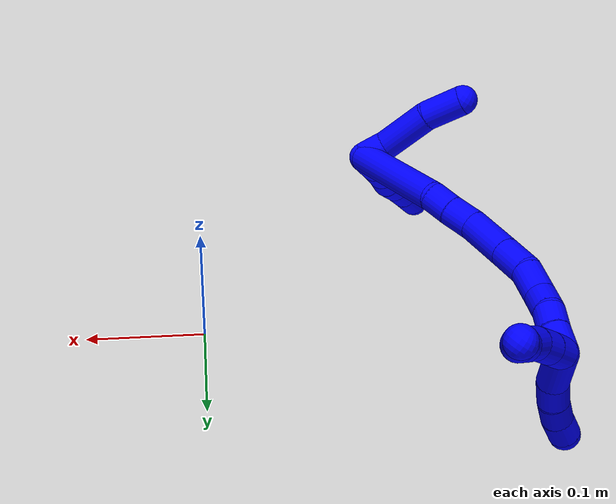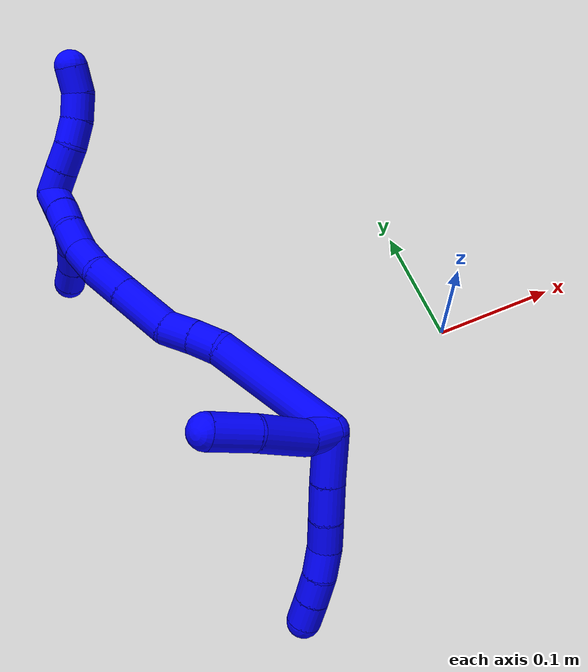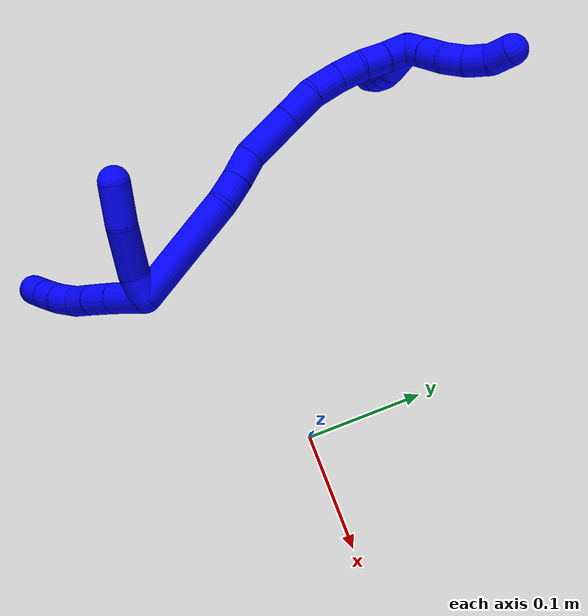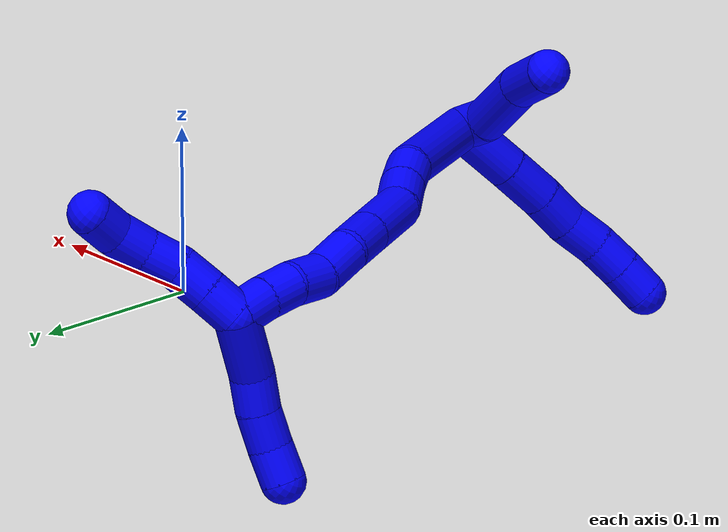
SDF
<sdf version="1.7">
 <world name="default">
  <model name="1">
   <static>0</static>
   <link name="1">
    <collision name="collision-cylinder-e_1_2_8">
     <pose>0.008655 -0.016107 0.003089 1.3813 0.485586 0.4038</pose>
     <geometry><cylinder><radius>0.0125</radius><length>0.037088</length></cylinder></geometry>
     <surface>
      <friction><ode><mu>1.16</mu><mu2>1.16</mu2><slip1>0</slip1><slip2>0</slip2></ode></friction>
      <contact><ode><kp>1e+06</kp><kd>1</kd><max_vel>0</max_vel><min_depth>0.001</min_depth></ode></contact>
     </surface>
    </collision>
    <visual name="visual-cylinder-e_1_2_8">
     <pose>0.008655 -0.016107 0.003089 1.3813 0.485586 0.4038</pose>
     <geometry><cylinder><radius>0.0125</radius><length>0.037088</length></cylinder></geometry>
     <material><ambient>0 0 1 1</ambient></material>
    </visual>
    <collision name="collision-cylinder-e_2_8_9">
     <pose>0.023556 -0.044425 0.008883 1.35281 0.463161 0.374158</pose>
     <geometry><cylinder><radius>0.0125</radius><length>0.02796</length></cylinder></geometry>
     <surface>
      <friction><ode><mu>1.16</mu><mu2>1.16</mu2><slip1>0</slip1><slip2>0</slip2></ode></friction>
      <contact><ode><kp>1e+06</kp><kd>1</kd><max_vel>0</max_vel><min_depth>0.001</min_depth></ode></contact>
     </surface>
    </collision>
    <visual name="visual-cylinder-e_2_8_9">
     <pose>0.023556 -0.044425 0.008883 1.35281 0.463161 0.374158</pose>
     <geometry><cylinder><radius>0.0125</radius><length>0.02796</length></cylinder></geometry>
     <material><ambient>0 0 1 1</ambient></material>
    </visual>
    <collision name="collision-cylinder-e_3_9_10">
     <pose>0.035101 -0.066166 0.01447 1.27716 0.489095 0.366335</pose>
     <geometry><cylinder><radius>0.0125</radius><length>0.022556</length></cylinder></geometry>
     <surface>
      <friction><ode><mu>1.16</mu><mu2>1.16</mu2><slip1>0</slip1><slip2>0</slip2></ode></friction>
      <contact><ode><kp>1e+06</kp><kd>1</kd><max_vel>0</max_vel><min_depth>0.001</min_depth></ode></contact>
     </surface>
    </collision>
    <visual name="visual-cylinder-e_3_9_10">
     <pose>0.035101 -0.066166 0.01447 1.27716 0.489095 0.366335</pose>
     <geometry><cylinder><radius>0.0125</radius><length>0.022556</length></cylinder></geometry>
     <material><ambient>0 0 1 1</ambient></material>
    </visual>
    <collision name="collision-cylinder-e_4_10_11">
     <pose>0.046261 -0.084975 0.018119 1.48826 0.561829 0.519328</pose>
     <geometry><cylinder><radius>0.0125</radius><length>0.022005</length></cylinder></geometry>
     <surface>
      <friction><ode><mu>1.16</mu><mu2>1.16</mu2><slip1>0</slip1><slip2>0</slip2></ode></friction>
      <contact><ode><kp>1e+06</kp><kd>1</kd><max_vel>0</max_vel><min_depth>0.001</min_depth></ode></contact>
     </surface>
    </collision>
    <visual name="visual-cylinder-e_4_10_11">
     <pose>0.046261 -0.084975 0.018119 1.48826 0.561829 0.519328</pose>
     <geometry><cylinder><radius>0.0125</radius><length>0.022005</length></cylinder></geometry>
     <material><ambient>0 0 1 1</ambient></material>
    </visual>
    <collision name="collision-cylinder-e_5_11_12">
     <pose>0.058596 -0.101885 0.020102 1.41286 0.697409 0.60165</pose>
     <geometry><cylinder><radius>0.0125</radius><length>0.02016</length></cylinder></geometry>
     <surface>
      <friction><ode><mu>1.16</mu><mu2>1.16</mu2><slip1>0</slip1><slip2>0</slip2></ode></friction>
      <contact><ode><kp>1e+06</kp><kd>1</kd><max_vel>0</max_vel><min_depth>0.001</min_depth></ode></contact>
     </surface>
    </collision>
    <visual name="visual-cylinder-e_5_11_12">
     <pose>0.058596 -0.101885 0.020102 1.41286 0.697409 0.60165</pose>
     <geometry><cylinder><radius>0.0125</radius><length>0.02016</length></cylinder></geometry>
     <material><ambient>0 0 1 1</ambient></material>
    </visual>
    <collision name="collision-cylinder-e_6_12_6">
     <pose>0.071869 -0.116844 0.022858 1.36355 0.737153 0.607521</pose>
     <geometry><cylinder><radius>0.0125</radius><length>0.020231</length></cylinder></geometry>
     <surface>
      <friction><ode><mu>1.16</mu><mu2>1.16</mu2><slip1>0</slip1><slip2>0</slip2></ode></friction>
      <contact><ode><kp>1e+06</kp><kd>1</kd><max_vel>0</max_vel><min_depth>0.001</min_depth></ode></contact>
     </surface>
    </collision>
    <visual name="visual-cylinder-e_6_12_6">
     <pose>0.071869 -0.116844 0.022858 1.36355 0.737153 0.607521</pose>
     <geometry><cylinder><radius>0.0125</radius><length>0.020231</length></cylinder></geometry>
     <material><ambient>0 0 1 1</ambient></material>
    </visual>
    <collision name="collision-cylinder-e_1_2_13">
     <pose>0.004882 0.000385 -0.009337 -3.10043 0.481399 -2.97426</pose>
     <geometry><cylinder><radius>0.0125</radius><length>0.021086</length></cylinder></geometry>
     <surface>
      <friction><ode><mu>1.16</mu><mu2>1.16</mu2><slip1>0</slip1><slip2>0</slip2></ode></friction>
      <contact><ode><kp>1e+06</kp><kd>1</kd><max_vel>0</max_vel><min_depth>0.001</min_depth></ode></contact>
     </surface>
    </collision>
    <visual name="visual-cylinder-e_1_2_13">
     <pose>0.004882 0.000385 -0.009337 -3.10043 0.481399 -2.97426</pose>
     <geometry><cylinder><radius>0.0125</radius><length>0.021086</length></cylinder></geometry>
     <material><ambient>0 0 1 1</ambient></material>
    </visual>
    <collision name="collision-cylinder-e_2_13_14">
     <pose>0.016165 0.007532 -0.039169 -2.82286 0.28835 -1.46922</pose>
     <geometry><cylinder><radius>0.0125</radius><length>0.045023</length></cylinder></geometry>
     <surface>
      <friction><ode><mu>1.16</mu><mu2>1.16</mu2><slip1>0</slip1><slip2>0</slip2></ode></friction>
      <contact><ode><kp>1e+06</kp><kd>1</kd><max_vel>0</max_vel><min_depth>0.001</min_depth></ode></contact>
     </surface>
    </collision>
    <visual name="visual-cylinder-e_2_13_14">
     <pose>0.016165 0.007532 -0.039169 -2.82286 0.28835 -1.46922</pose>
     <geometry><cylinder><radius>0.0125</radius><length>0.045023</length></cylinder></geometry>
     <material><ambient>0 0 1 1</ambient></material>
    </visual>
    <collision name="collision-cylinder-e_3_14_5">
     <pose>0.030643 0.019355 -0.073675 -2.79506 0.496777 -1.93352</pose>
     <geometry><cylinder><radius>0.0125</radius><length>0.033891</length></cylinder></geometry>
     <surface>
      <friction><ode><mu>1.16</mu><mu2>1.16</mu2><slip1>0</slip1><slip2>0</slip2></ode></friction>
      <contact><ode><kp>1e+06</kp><kd>1</kd><max_vel>0</max_vel><min_depth>0.001</min_depth></ode></contact>
     </surface>
    </collision>
    <visual name="visual-cylinder-e_3_14_5">
     <pose>0.030643 0.019355 -0.073675 -2.79506 0.496777 -1.93352</pose>
     <geometry><cylinder><radius>0.0125</radius><length>0.033891</length></cylinder></geometry>
     <material><ambient>0 0 1 1</ambient></material>
    </visual>
    <collision name="collision-cylinder-e_1_2_15">
     <pose>0.02729 0.038267 -0.006441 -1.73755 0.612906 -0.716013</pose>
     <geometry><cylinder><radius>0.0125</radius><length>0.094881</length></cylinder></geometry>
     <surface>
      <friction><ode><mu>1.16</mu><mu2>1.16</mu2><slip1>0</slip1><slip2>0</slip2></ode></friction>
      <contact><ode><kp>1e+06</kp><kd>1</kd><max_vel>0</max_vel><min_depth>0.001</min_depth></ode></contact>
     </surface>
    </collision>
    <visual name="visual-cylinder-e_1_2_15">
     <pose>0.02729 0.038267 -0.006441 -1.73755 0.612906 -0.716013</pose>
     <geometry><cylinder><radius>0.0125</radius><length>0.094881</length></cylinder></geometry>
     <material><ambient>0 0 1 1</ambient></material>
    </visual>
    <collision name="collision-cylinder-e_2_15_16">
     <pose>0.062965 0.083185 -0.013011 -1.59024 0.900148 -0.915477</pose>
     <geometry><cylinder><radius>0.0125</radius><length>0.021406</length></cylinder></geometry>
     <surface>
      <friction><ode><mu>1.16</mu><mu2>1.16</mu2><slip1>0</slip1><slip2>0</slip2></ode></friction>
      <contact><ode><kp>1e+06</kp><kd>1</kd><max_vel>0</max_vel><min_depth>0.001</min_depth></ode></contact>
     </surface>
    </collision>
    <visual name="visual-cylinder-e_2_15_16">
     <pose>0.062965 0.083185 -0.013011 -1.59024 0.900148 -0.915477</pose>
     <geometry><cylinder><radius>0.0125</radius><length>0.021406</length></cylinder></geometry>
     <material><ambient>0 0 1 1</ambient></material>
    </visual>
    <collision name="collision-cylinder-e_3_16_17">
     <pose>0.080868 0.096573 -0.013832 -1.67307 0.952372 -1.03828</pose>
     <geometry><cylinder><radius>0.0125</radius><length>0.023365</length></cylinder></geometry>
     <surface>
      <friction><ode><mu>1.16</mu><mu2>1.16</mu2><slip1>0</slip1><slip2>0</slip2></ode></friction>
      <contact><ode><kp>1e+06</kp><kd>1</kd><max_vel>0</max_vel><min_depth>0.001</min_depth></ode></contact>
     </surface>
    </collision>
    <visual name="visual-cylinder-e_3_16_17">
     <pose>0.080868 0.096573 -0.013832 -1.67307 0.952372 -1.03828</pose>
     <geometry><cylinder><radius>0.0125</radius><length>0.023365</length></cylinder></geometry>
     <material><ambient>0 0 1 1</ambient></material>
    </visual>
    <collision name="collision-cylinder-e_4_17_18">
     <pose>0.103056 0.120855 -0.014511 -1.5701 0.625384 -0.624977</pose>
     <geometry><cylinder><radius>0.0125</radius><length>0.04328</length></cylinder></geometry>
     <surface>
      <friction><ode><mu>1.16</mu><mu2>1.16</mu2><slip1>0</slip1><slip2>0</slip2></ode></friction>
      <contact><ode><kp>1e+06</kp><kd>1</kd><max_vel>0</max_vel><min_depth>0.001</min_depth></ode></contact>
     </surface>
    </collision>
    <visual name="visual-cylinder-e_4_17_18">
     <pose>0.103056 0.120855 -0.014511 -1.5701 0.625384 -0.624977</pose>
     <geometry><cylinder><radius>0.0125</radius><length>0.04328</length></cylinder></geometry>
     <material><ambient>0 0 1 1</ambient></material>
    </visual>
    <collision name="collision-cylinder-e_5_18_19">
     <pose>0.123851 0.149577 -0.014394 -1.56145 0.628656 -0.623181</pose>
     <geometry><cylinder><radius>0.0125</radius><length>0.027641</length></cylinder></geometry>
     <surface>
      <friction><ode><mu>1.16</mu><mu2>1.16</mu2><slip1>0</slip1><slip2>0</slip2></ode></friction>
      <contact><ode><kp>1e+06</kp><kd>1</kd><max_vel>0</max_vel><min_depth>0.001</min_depth></ode></contact>
     </surface>
    </collision>
    <visual name="visual-cylinder-e_5_18_19">
     <pose>0.123851 0.149577 -0.014394 -1.56145 0.628656 -0.623181</pose>
     <geometry><cylinder><radius>0.0125</radius><length>0.027641</length></cylinder></geometry>
     <material><ambient>0 0 1 1</ambient></material>
    </visual>
    <collision name="collision-cylinder-e_6_19_20">
     <pose>0.139356 0.17101 -0.010543 -1.22053 0.59425 -0.421873</pose>
     <geometry><cylinder><radius>0.0125</radius><length>0.026354</length></cylinder></geometry>
     <surface>
      <friction><ode><mu>1.16</mu><mu2>1.16</mu2><slip1>0</slip1><slip2>0</slip2></ode></friction>
      <contact><ode><kp>1e+06</kp><kd>1</kd><max_vel>0</max_vel><min_depth>0.001</min_depth></ode></contact>
     </surface>
    </collision>
    <visual name="visual-cylinder-e_6_19_20">
     <pose>0.139356 0.17101 -0.010543 -1.22053 0.59425 -0.421873</pose>
     <geometry><cylinder><radius>0.0125</radius><length>0.026354</length></cylinder></geometry>
     <material><ambient>0 0 1 1</ambient></material>
    </visual>
    <collision name="collision-cylinder-e_7_20_21">
     <pose>0.150062 0.19155 -0.004977 -1.39567 0.308444 -0.259267</pose>
     <geometry><cylinder><radius>0.0125</radius><length>0.021925</length></cylinder></geometry>
     <surface>
      <friction><ode><mu>1.16</mu><mu2>1.16</mu2><slip1>0</slip1><slip2>0</slip2></ode></friction>
      <contact><ode><kp>1e+06</kp><kd>1</kd><max_vel>0</max_vel><min_depth>0.001</min_depth></ode></contact>
     </surface>
    </collision>
    <visual name="visual-cylinder-e_7_20_21">
     <pose>0.150062 0.19155 -0.004977 -1.39567 0.308444 -0.259267</pose>
     <geometry><cylinder><radius>0.0125</radius><length>0.021925</length></cylinder></geometry>
     <material><ambient>0 0 1 1</ambient></material>
    </visual>
    <collision name="collision-cylinder-e_8_21_22">
     <pose>0.156865 0.210532 0.000629 -1.16021 0.351253 -0.231538</pose>
     <geometry><cylinder><radius>0.0125</radius><length>0.020204</length></cylinder></geometry>
     <surface>
      <friction><ode><mu>1.16</mu><mu2>1.16</mu2><slip1>0</slip1><slip2>0</slip2></ode></friction>
      <contact><ode><kp>1e+06</kp><kd>1</kd><max_vel>0</max_vel><min_depth>0.001</min_depth></ode></contact>
     </surface>
    </collision>
    <visual name="visual-cylinder-e_8_21_22">
     <pose>0.156865 0.210532 0.000629 -1.16021 0.351253 -0.231538</pose>
     <geometry><cylinder><radius>0.0125</radius><length>0.020204</length></cylinder></geometry>
     <material><ambient>0 0 1 1</ambient></material>
    </visual>
    <collision name="collision-cylinder-e_9_22_1">
     <pose>0.164851 0.227906 0.008162 -1.16317 0.445202 -0.295456</pose>
     <geometry><cylinder><radius>0.0125</radius><length>0.020945</length></cylinder></geometry>
     <surface>
      <friction><ode><mu>1.16</mu><mu2>1.16</mu2><slip1>0</slip1><slip2>0</slip2></ode></friction>
      <contact><ode><kp>1e+06</kp><kd>1</kd><max_vel>0</max_vel><min_depth>0.001</min_depth></ode></contact>
     </surface>
    </collision>
    <visual name="visual-cylinder-e_9_22_1">
     <pose>0.164851 0.227906 0.008162 -1.16317 0.445202 -0.295456</pose>
     <geometry><cylinder><radius>0.0125</radius><length>0.020945</length></cylinder></geometry>
     <material><ambient>0 0 1 1</ambient></material>
    </visual>
    <collision name="collision-cylinder-e_1_1_23">
     <pose>0.162226 0.243589 0.011771 -1.59047 -0.794451 0.808586</pose>
     <geometry><cylinder><radius>0.0125</radius><length>0.02</length></cylinder></geometry>
     <surface>
      <friction><ode><mu>1.16</mu><mu2>1.16</mu2><slip1>0</slip1><slip2>0</slip2></ode></friction>
      <contact><ode><kp>1e+06</kp><kd>1</kd><max_vel>0</max_vel><min_depth>0.001</min_depth></ode></contact>
     </surface>
    </collision>
    <visual name="visual-cylinder-e_1_1_23">
     <pose>0.162226 0.243589 0.011771 -1.59047 -0.794451 0.808586</pose>
     <geometry><cylinder><radius>0.0125</radius><length>0.02</length></cylinder></geometry>
     <material><ambient>0 0 1 1</ambient></material>
    </visual>
    <collision name="collision-cylinder-e_2_23_24">
     <pose>0.147967 0.25761 0.011763 -1.55225 -0.792945 0.779817</pose>
     <geometry><cylinder><radius>0.0125</radius><length>0.02</length></cylinder></geometry>
     <surface>
      <friction><ode><mu>1.16</mu><mu2>1.16</mu2><slip1>0</slip1><slip2>0</slip2></ode></friction>
      <contact><ode><kp>1e+06</kp><kd>1</kd><max_vel>0</max_vel><min_depth>0.001</min_depth></ode></contact>
     </surface>
    </collision>
    <visual name="visual-cylinder-e_2_23_24">
     <pose>0.147967 0.25761 0.011763 -1.55225 -0.792945 0.779817</pose>
     <geometry><cylinder><radius>0.0125</radius><length>0.02</length></cylinder></geometry>
     <material><ambient>0 0 1 1</ambient></material>
    </visual>
    <collision name="collision-cylinder-e_3_24_25">
     <pose>0.13546 0.272967 0.013105 -1.42649 -0.568378 0.495066</pose>
     <geometry><cylinder><radius>0.0125</radius><length>0.02</length></cylinder></geometry>
     <surface>
      <friction><ode><mu>1.16</mu><mu2>1.16</mu2><slip1>0</slip1><slip2>0</slip2></ode></friction>
      <contact><ode><kp>1e+06</kp><kd>1</kd><max_vel>0</max_vel><min_depth>0.001</min_depth></ode></contact>
     </surface>
    </collision>
    <visual name="visual-cylinder-e_3_24_25">
     <pose>0.13546 0.272967 0.013105 -1.42649 -0.568378 0.495066</pose>
     <geometry><cylinder><radius>0.0125</radius><length>0.02</length></cylinder></geometry>
     <material><ambient>0 0 1 1</ambient></material>
    </visual>
    <collision name="collision-cylinder-e_4_25_26">
     <pose>0.125707 0.290299 0.014085 -1.59658 -0.45225 0.463652</pose>
     <geometry><cylinder><radius>0.0125</radius><length>0.02</length></cylinder></geometry>
     <surface>
      <friction><ode><mu>1.16</mu><mu2>1.16</mu2><slip1>0</slip1><slip2>0</slip2></ode></friction>
      <contact><ode><kp>1e+06</kp><kd>1</kd><max_vel>0</max_vel><min_depth>0.001</min_depth></ode></contact>
     </surface>
    </collision>
    <visual name="visual-cylinder-e_4_25_26">
     <pose>0.125707 0.290299 0.014085 -1.59658 -0.45225 0.463652</pose>
     <geometry><cylinder><radius>0.0125</radius><length>0.02</length></cylinder></geometry>
     <material><ambient>0 0 1 1</ambient></material>
    </visual>
    <collision name="collision-cylinder-e_5_26_4">
     <pose>0.118854 0.308525 0.010929 -1.87749 -0.250954 0.341171</pose>
     <geometry><cylinder><radius>0.0125</radius><length>0.02</length></cylinder></geometry>
     <surface>
      <friction><ode><mu>1.16</mu><mu2>1.16</mu2><slip1>0</slip1><slip2>0</slip2></ode></friction>
      <contact><ode><kp>1e+06</kp><kd>1</kd><max_vel>0</max_vel><min_depth>0.001</min_depth></ode></contact>
     </surface>
    </collision>
    <visual name="visual-cylinder-e_5_26_4">
     <pose>0.118854 0.308525 0.010929 -1.87749 -0.250954 0.341171</pose>
     <geometry><cylinder><radius>0.0125</radius><length>0.02</length></cylinder></geometry>
     <material><ambient>0 0 1 1</ambient></material>
    </visual>
    <collision name="collision-cylinder-e_1_1_27">
     <pose>0.176437 0.224711 0.024538 0.754485 0.387588 0.155209</pose>
     <geometry><cylinder><radius>0.0125</radius><length>0.037445</length></cylinder></geometry>
     <surface>
      <friction><ode><mu>1.16</mu><mu2>1.16</mu2><slip1>0</slip1><slip2>0</slip2></ode></friction>
      <contact><ode><kp>1e+06</kp><kd>1</kd><max_vel>0</max_vel><min_depth>0.001</min_depth></ode></contact>
     </surface>
    </collision>
    <visual name="visual-cylinder-e_1_1_27">
     <pose>0.176437 0.224711 0.024538 0.754485 0.387588 0.155209</pose>
     <geometry><cylinder><radius>0.0125</radius><length>0.037445</length></cylinder></geometry>
     <material><ambient>0 0 1 1</ambient></material>
    </visual>
    <collision name="collision-cylinder-e_2_27_28">
     <pose>0.189789 0.208007 0.044223 0.600545 0.633068 0.202149</pose>
     <geometry><cylinder><radius>0.0125</radius><length>0.021213</length></cylinder></geometry>
     <surface>
      <friction><ode><mu>1.16</mu><mu2>1.16</mu2><slip1>0</slip1><slip2>0</slip2></ode></friction>
      <contact><ode><kp>1e+06</kp><kd>1</kd><max_vel>0</max_vel><min_depth>0.001</min_depth></ode></contact>
     </surface>
    </collision>
    <visual name="visual-cylinder-e_2_27_28">
     <pose>0.189789 0.208007 0.044223 0.600545 0.633068 0.202149</pose>
     <geometry><cylinder><radius>0.0125</radius><length>0.021213</length></cylinder></geometry>
     <material><ambient>0 0 1 1</ambient></material>
    </visual>
    <collision name="collision-cylinder-e_3_28_29">
     <pose>0.202897 0.197685 0.057036 0.761484 0.709662 0.294467</pose>
     <geometry><cylinder><radius>0.0125</radius><length>0.020974</length></cylinder></geometry>
     <surface>
      <friction><ode><mu>1.16</mu><mu2>1.16</mu2><slip1>0</slip1><slip2>0</slip2></ode></friction>
      <contact><ode><kp>1e+06</kp><kd>1</kd><max_vel>0</max_vel><min_depth>0.001</min_depth></ode></contact>
     </surface>
    </collision>
    <visual name="visual-cylinder-e_3_28_29">
     <pose>0.202897 0.197685 0.057036 0.761484 0.709662 0.294467</pose>
     <geometry><cylinder><radius>0.0125</radius><length>0.020974</length></cylinder></geometry>
     <material><ambient>0 0 1 1</ambient></material>
    </visual>
    <collision name="collision-cylinder-e_4_29_3">
     <pose>0.217462 0.187416 0.067385 0.805715 0.862158 0.387103</pose>
     <geometry><cylinder><radius>0.0125</radius><length>0.020368</length></cylinder></geometry>
     <surface>
      <friction><ode><mu>1.16</mu><mu2>1.16</mu2><slip1>0</slip1><slip2>0</slip2></ode></friction>
      <contact><ode><kp>1e+06</kp><kd>1</kd><max_vel>0</max_vel><min_depth>0.001</min_depth></ode></contact>
     </surface>
    </collision>
    <visual name="visual-cylinder-e_4_29_3">
     <pose>0.217462 0.187416 0.067385 0.805715 0.862158 0.387103</pose>
     <geometry><cylinder><radius>0.0125</radius><length>0.020368</length></cylinder></geometry>
     <material><ambient>0 0 1 1</ambient></material>
    </visual>
    <collision name="collision-sphere-3">
     <pose>0.225194 0.182635 0.071975 0 -0 0</pose>
     <geometry><sphere><radius>0.0125</radius></sphere></geometry>
     <surface>
      <friction><ode><mu>1.16</mu><mu2>1.16</mu2><slip1>0</slip1><slip2>0</slip2></ode></friction>
      <contact><ode><kp>1e+06</kp><kd>1</kd><max_vel>0</max_vel><min_depth>0.001</min_depth></ode></contact>
     </surface>
    </collision>
    <visual name="visual-sphere-3">
     <pose>0.225194 0.182635 0.071975 0 -0 0</pose>
     <geometry><sphere><radius>0.0125</radius></sphere></geometry>
     <material><ambient>0 0 1 1</ambient></material>
    </visual>
    <collision name="collision-sphere-29">
     <pose>0.20973 0.192196 0.062794 0 -0 0</pose>
     <geometry><sphere><radius>0.0125</radius></sphere></geometry>
     <surface>
      <friction><ode><mu>1.16</mu><mu2>1.16</mu2><slip1>0</slip1><slip2>0</slip2></ode></friction>
      <contact><ode><kp>1e+06</kp><kd>1</kd><max_vel>0</max_vel><min_depth>0.001</min_depth></ode></contact>
     </surface>
    </collision>
    <visual name="visual-sphere-29">
     <pose>0.20973 0.192196 0.062794 0 -0 0</pose>
     <geometry><sphere><radius>0.0125</radius></sphere></geometry>
     <material><ambient>0 0 1 1</ambient></material>
    </visual>
    <collision name="collision-sphere-28">
     <pose>0.196064 0.203174 0.051278 0 -0 0</pose>
     <geometry><sphere><radius>0.0125</radius></sphere></geometry>
     <surface>
      <friction><ode><mu>1.16</mu><mu2>1.16</mu2><slip1>0</slip1><slip2>0</slip2></ode></friction>
      <contact><ode><kp>1e+06</kp><kd>1</kd><max_vel>0</max_vel><min_depth>0.001</min_depth></ode></contact>
     </surface>
    </collision>
    <visual name="visual-sphere-28">
     <pose>0.196064 0.203174 0.051278 0 -0 0</pose>
     <geometry><sphere><radius>0.0125</radius></sphere></geometry>
     <material><ambient>0 0 1 1</ambient></material>
    </visual>
    <collision name="collision-sphere-27">
     <pose>0.183513 0.212839 0.037168 0 -0 0</pose>
     <geometry><sphere><radius>0.0125</radius></sphere></geometry>
     <surface>
      <friction><ode><mu>1.16</mu><mu2>1.16</mu2><slip1>0</slip1><slip2>0</slip2></ode></friction>
      <contact><ode><kp>1e+06</kp><kd>1</kd><max_vel>0</max_vel><min_depth>0.001</min_depth></ode></contact>
     </surface>
    </collision>
    <visual name="visual-sphere-27">
     <pose>0.183513 0.212839 0.037168 0 -0 0</pose>
     <geometry><sphere><radius>0.0125</radius></sphere></geometry>
     <material><ambient>0 0 1 1</ambient></material>
    </visual>
    <collision name="collision-sphere-4">
     <pose>0.116371 0.31776 0.008004 0 -0 0</pose>
     <geometry><sphere><radius>0.0125</radius></sphere></geometry>
     <surface>
      <friction><ode><mu>1.16</mu><mu2>1.16</mu2><slip1>0</slip1><slip2>0</slip2></ode></friction>
      <contact><ode><kp>1e+06</kp><kd>1</kd><max_vel>0</max_vel><min_depth>0.001</min_depth></ode></contact>
     </surface>
    </collision>
    <visual name="visual-sphere-4">
     <pose>0.116371 0.31776 0.008004 0 -0 0</pose>
     <geometry><sphere><radius>0.0125</radius></sphere></geometry>
     <material><ambient>0 0 1 1</ambient></material>
    </visual>
    <collision name="collision-sphere-26">
     <pose>0.121338 0.29929 0.013853 0 -0 0</pose>
     <geometry><sphere><radius>0.0125</radius></sphere></geometry>
     <surface>
      <friction><ode><mu>1.16</mu><mu2>1.16</mu2><slip1>0</slip1><slip2>0</slip2></ode></friction>
      <contact><ode><kp>1e+06</kp><kd>1</kd><max_vel>0</max_vel><min_depth>0.001</min_depth></ode></contact>
     </surface>
    </collision>
    <visual name="visual-sphere-26">
     <pose>0.121338 0.29929 0.013853 0 -0 0</pose>
     <geometry><sphere><radius>0.0125</radius></sphere></geometry>
     <material><ambient>0 0 1 1</ambient></material>
    </visual>
    <collision name="collision-sphere-25">
     <pose>0.130077 0.281307 0.014317 0 -0 0</pose>
     <geometry><sphere><radius>0.0125</radius></sphere></geometry>
     <surface>
      <friction><ode><mu>1.16</mu><mu2>1.16</mu2><slip1>0</slip1><slip2>0</slip2></ode></friction>
      <contact><ode><kp>1e+06</kp><kd>1</kd><max_vel>0</max_vel><min_depth>0.001</min_depth></ode></contact>
     </surface>
    </collision>
    <visual name="visual-sphere-25">
     <pose>0.130077 0.281307 0.014317 0 -0 0</pose>
     <geometry><sphere><radius>0.0125</radius></sphere></geometry>
     <material><ambient>0 0 1 1</ambient></material>
    </visual>
    <collision name="collision-sphere-24">
     <pose>0.140843 0.264627 0.011893 0 -0 0</pose>
     <geometry><sphere><radius>0.0125</radius></sphere></geometry>
     <surface>
      <friction><ode><mu>1.16</mu><mu2>1.16</mu2><slip1>0</slip1><slip2>0</slip2></ode></friction>
      <contact><ode><kp>1e+06</kp><kd>1</kd><max_vel>0</max_vel><min_depth>0.001</min_depth></ode></contact>
     </surface>
    </collision>
    <visual name="visual-sphere-24">
     <pose>0.140843 0.264627 0.011893 0 -0 0</pose>
     <geometry><sphere><radius>0.0125</radius></sphere></geometry>
     <material><ambient>0 0 1 1</ambient></material>
    </visual>
    <collision name="collision-sphere-23">
     <pose>0.155091 0.250594 0.011633 0 -0 0</pose>
     <geometry><sphere><radius>0.0125</radius></sphere></geometry>
     <surface>
      <friction><ode><mu>1.16</mu><mu2>1.16</mu2><slip1>0</slip1><slip2>0</slip2></ode></friction>
      <contact><ode><kp>1e+06</kp><kd>1</kd><max_vel>0</max_vel><min_depth>0.001</min_depth></ode></contact>
     </surface>
    </collision>
    <visual name="visual-sphere-23">
     <pose>0.155091 0.250594 0.011633 0 -0 0</pose>
     <geometry><sphere><radius>0.0125</radius></sphere></geometry>
     <material><ambient>0 0 1 1</ambient></material>
    </visual>
    <collision name="collision-sphere-1">
     <pose>0.169361 0.236583 0.011908 0 -0 0</pose>
     <geometry><sphere><radius>0.0125</radius></sphere></geometry>
     <surface>
      <friction><ode><mu>1.16</mu><mu2>1.16</mu2><slip1>0</slip1><slip2>0</slip2></ode></friction>
      <contact><ode><kp>1e+06</kp><kd>1</kd><max_vel>0</max_vel><min_depth>0.001</min_depth></ode></contact>
     </surface>
    </collision>
    <visual name="visual-sphere-1">
     <pose>0.169361 0.236583 0.011908 0 -0 0</pose>
     <geometry><sphere><radius>0.0125</radius></sphere></geometry>
     <material><ambient>0 0 1 1</ambient></material>
    </visual>
    <collision name="collision-sphere-22">
     <pose>0.160341 0.219229 0.004415 0 -0 0</pose>
     <geometry><sphere><radius>0.0125</radius></sphere></geometry>
     <surface>
      <friction><ode><mu>1.16</mu><mu2>1.16</mu2><slip1>0</slip1><slip2>0</slip2></ode></friction>
      <contact><ode><kp>1e+06</kp><kd>1</kd><max_vel>0</max_vel><min_depth>0.001</min_depth></ode></contact>
     </surface>
    </collision>
    <visual name="visual-sphere-22">
     <pose>0.160341 0.219229 0.004415 0 -0 0</pose>
     <geometry><sphere><radius>0.0125</radius></sphere></geometry>
     <material><ambient>0 0 1 1</ambient></material>
    </visual>
    <collision name="collision-sphere-21">
     <pose>0.15339 0.201836 -0.003157 0 -0 0</pose>
     <geometry><sphere><radius>0.0125</radius></sphere></geometry>
     <surface>
      <friction><ode><mu>1.16</mu><mu2>1.16</mu2><slip1>0</slip1><slip2>0</slip2></ode></friction>
      <contact><ode><kp>1e+06</kp><kd>1</kd><max_vel>0</max_vel><min_depth>0.001</min_depth></ode></contact>
     </surface>
    </collision>
    <visual name="visual-sphere-21">
     <pose>0.15339 0.201836 -0.003157 0 -0 0</pose>
     <geometry><sphere><radius>0.0125</radius></sphere></geometry>
     <material><ambient>0 0 1 1</ambient></material>
    </visual>
    <collision name="collision-sphere-12">
     <pose>0.06507 -0.109515 0.021317 0 -0 0</pose>
     <geometry><sphere><radius>0.0125</radius></sphere></geometry>
     <surface>
      <friction><ode><mu>1.16</mu><mu2>1.16</mu2><slip1>0</slip1><slip2>0</slip2></ode></friction>
      <contact><ode><kp>1e+06</kp><kd>1</kd><max_vel>0</max_vel><min_depth>0.001</min_depth></ode></contact>
     </surface>
    </collision>
    <visual name="visual-sphere-12">
     <pose>0.06507 -0.109515 0.021317 0 -0 0</pose>
     <geometry><sphere><radius>0.0125</radius></sphere></geometry>
     <material><ambient>0 0 1 1</ambient></material>
    </visual>
    <collision name="collision-sphere-11">
     <pose>0.052122 -0.094255 0.018887 0 -0 0</pose>
     <geometry><sphere><radius>0.0125</radius></sphere></geometry>
     <surface>
      <friction><ode><mu>1.16</mu><mu2>1.16</mu2><slip1>0</slip1><slip2>0</slip2></ode></friction>
      <contact><ode><kp>1e+06</kp><kd>1</kd><max_vel>0</max_vel><min_depth>0.001</min_depth></ode></contact>
     </surface>
    </collision>
    <visual name="visual-sphere-11">
     <pose>0.052122 -0.094255 0.018887 0 -0 0</pose>
     <geometry><sphere><radius>0.0125</radius></sphere></geometry>
     <material><ambient>0 0 1 1</ambient></material>
    </visual>
    <collision name="collision-sphere-10">
     <pose>0.040399 -0.075695 0.017352 0 -0 0</pose>
     <geometry><sphere><radius>0.0125</radius></sphere></geometry>
     <surface>
      <friction><ode><mu>1.16</mu><mu2>1.16</mu2><slip1>0</slip1><slip2>0</slip2></ode></friction>
      <contact><ode><kp>1e+06</kp><kd>1</kd><max_vel>0</max_vel><min_depth>0.001</min_depth></ode></contact>
     </surface>
    </collision>
    <visual name="visual-sphere-10">
     <pose>0.040399 -0.075695 0.017352 0 -0 0</pose>
     <geometry><sphere><radius>0.0125</radius></sphere></geometry>
     <material><ambient>0 0 1 1</ambient></material>
    </visual>
    <collision name="collision-sphere-9">
     <pose>0.029802 -0.056636 0.011588 0 -0 0</pose>
     <geometry><sphere><radius>0.0125</radius></sphere></geometry>
     <surface>
      <friction><ode><mu>1.16</mu><mu2>1.16</mu2><slip1>0</slip1><slip2>0</slip2></ode></friction>
      <contact><ode><kp>1e+06</kp><kd>1</kd><max_vel>0</max_vel><min_depth>0.001</min_depth></ode></contact>
     </surface>
    </collision>
    <visual name="visual-sphere-9">
     <pose>0.029802 -0.056636 0.011588 0 -0 0</pose>
     <geometry><sphere><radius>0.0125</radius></sphere></geometry>
     <material><ambient>0 0 1 1</ambient></material>
    </visual>
    <collision name="collision-sphere-2">
     <geometry><sphere><radius>0.0125</radius></sphere></geometry>
     <surface>
      <friction><ode><mu>1.16</mu><mu2>1.16</mu2><slip1>0</slip1><slip2>0</slip2></ode></friction>
      <contact><ode><kp>1e+06</kp><kd>1</kd><max_vel>0</max_vel><min_depth>0.001</min_depth></ode></contact>
     </surface>
    </collision>
    <visual name="visual-sphere-2">
     <geometry><sphere><radius>0.0125</radius></sphere></geometry>
     <material><ambient>0 0 1 1</ambient></material>
    </visual>
    <collision name="collision-sphere-19">
     <pose>0.131978 0.160755 -0.01429 0 -0 0</pose>
     <geometry><sphere><radius>0.0125</radius></sphere></geometry>
     <surface>
      <friction><ode><mu>1.16</mu><mu2>1.16</mu2><slip1>0</slip1><slip2>0</slip2></ode></friction>
      <contact><ode><kp>1e+06</kp><kd>1</kd><max_vel>0</max_vel><min_depth>0.001</min_depth></ode></contact>
     </surface>
    </collision>
    <visual name="visual-sphere-19">
     <pose>0.131978 0.160755 -0.01429 0 -0 0</pose>
     <geometry><sphere><radius>0.0125</radius></sphere></geometry>
     <material><ambient>0 0 1 1</ambient></material>
    </visual>
    <collision name="collision-sphere-8">
     <pose>0.01731 -0.032213 0.006178 0 -0 0</pose>
     <geometry><sphere><radius>0.0125</radius></sphere></geometry>
     <surface>
      <friction><ode><mu>1.16</mu><mu2>1.16</mu2><slip1>0</slip1><slip2>0</slip2></ode></friction>
      <contact><ode><kp>1e+06</kp><kd>1</kd><max_vel>0</max_vel><min_depth>0.001</min_depth></ode></contact>
     </surface>
    </collision>
    <visual name="visual-sphere-8">
     <pose>0.01731 -0.032213 0.006178 0 -0 0</pose>
     <geometry><sphere><radius>0.0125</radius></sphere></geometry>
     <material><ambient>0 0 1 1</ambient></material>
    </visual>
    <collision name="collision-sphere-6">
     <pose>0.078668 -0.124173 0.024399 0 -0 0</pose>
     <geometry><sphere><radius>0.0125</radius></sphere></geometry>
     <surface>
      <friction><ode><mu>1.16</mu><mu2>1.16</mu2><slip1>0</slip1><slip2>0</slip2></ode></friction>
      <contact><ode><kp>1e+06</kp><kd>1</kd><max_vel>0</max_vel><min_depth>0.001</min_depth></ode></contact>
     </surface>
    </collision>
    <visual name="visual-sphere-6">
     <pose>0.078668 -0.124173 0.024399 0 -0 0</pose>
     <geometry><sphere><radius>0.0125</radius></sphere></geometry>
     <material><ambient>0 0 1 1</ambient></material>
    </visual>
    <collision name="collision-sphere-13">
     <pose>0.009763 0.000769 -0.018674 0 -0 0</pose>
     <geometry><sphere><radius>0.0125</radius></sphere></geometry>
     <surface>
      <friction><ode><mu>1.16</mu><mu2>1.16</mu2><slip1>0</slip1><slip2>0</slip2></ode></friction>
      <contact><ode><kp>1e+06</kp><kd>1</kd><max_vel>0</max_vel><min_depth>0.001</min_depth></ode></contact>
     </surface>
    </collision>
    <visual name="visual-sphere-13">
     <pose>0.009763 0.000769 -0.018674 0 -0 0</pose>
     <geometry><sphere><radius>0.0125</radius></sphere></geometry>
     <material><ambient>0 0 1 1</ambient></material>
    </visual>
    <collision name="collision-sphere-14">
     <pose>0.022566 0.014295 -0.059664 0 -0 0</pose>
     <geometry><sphere><radius>0.0125</radius></sphere></geometry>
     <surface>
      <friction><ode><mu>1.16</mu><mu2>1.16</mu2><slip1>0</slip1><slip2>0</slip2></ode></friction>
      <contact><ode><kp>1e+06</kp><kd>1</kd><max_vel>0</max_vel><min_depth>0.001</min_depth></ode></contact>
     </surface>
    </collision>
    <visual name="visual-sphere-14">
     <pose>0.022566 0.014295 -0.059664 0 -0 0</pose>
     <geometry><sphere><radius>0.0125</radius></sphere></geometry>
     <material><ambient>0 0 1 1</ambient></material>
    </visual>
    <collision name="collision-sphere-5">
     <pose>0.038719 0.024415 -0.087687 0 -0 0</pose>
     <geometry><sphere><radius>0.0125</radius></sphere></geometry>
     <surface>
      <friction><ode><mu>1.16</mu><mu2>1.16</mu2><slip1>0</slip1><slip2>0</slip2></ode></friction>
      <contact><ode><kp>1e+06</kp><kd>1</kd><max_vel>0</max_vel><min_depth>0.001</min_depth></ode></contact>
     </surface>
    </collision>
    <visual name="visual-sphere-5">
     <pose>0.038719 0.024415 -0.087687 0 -0 0</pose>
     <geometry><sphere><radius>0.0125</radius></sphere></geometry>
     <material><ambient>0 0 1 1</ambient></material>
    </visual>
    <collision name="collision-sphere-15">
     <pose>0.05458 0.076534 -0.012882 0 -0 0</pose>
     <geometry><sphere><radius>0.0125</radius></sphere></geometry>
     <surface>
      <friction><ode><mu>1.16</mu><mu2>1.16</mu2><slip1>0</slip1><slip2>0</slip2></ode></friction>
      <contact><ode><kp>1e+06</kp><kd>1</kd><max_vel>0</max_vel><min_depth>0.001</min_depth></ode></contact>
     </surface>
    </collision>
    <visual name="visual-sphere-15">
     <pose>0.05458 0.076534 -0.012882 0 -0 0</pose>
     <geometry><sphere><radius>0.0125</radius></sphere></geometry>
     <material><ambient>0 0 1 1</ambient></material>
    </visual>
    <collision name="collision-sphere-16">
     <pose>0.07135 0.089835 -0.01314 0 -0 0</pose>
     <geometry><sphere><radius>0.0125</radius></sphere></geometry>
     <surface>
      <friction><ode><mu>1.16</mu><mu2>1.16</mu2><slip1>0</slip1><slip2>0</slip2></ode></friction>
      <contact><ode><kp>1e+06</kp><kd>1</kd><max_vel>0</max_vel><min_depth>0.001</min_depth></ode></contact>
     </surface>
    </collision>
    <visual name="visual-sphere-16">
     <pose>0.07135 0.089835 -0.01314 0 -0 0</pose>
     <geometry><sphere><radius>0.0125</radius></sphere></geometry>
     <material><ambient>0 0 1 1</ambient></material>
    </visual>
    <collision name="collision-sphere-17">
     <pose>0.090387 0.10331 -0.014523 0 -0 0</pose>
     <geometry><sphere><radius>0.0125</radius></sphere></geometry>
     <surface>
      <friction><ode><mu>1.16</mu><mu2>1.16</mu2><slip1>0</slip1><slip2>0</slip2></ode></friction>
      <contact><ode><kp>1e+06</kp><kd>1</kd><max_vel>0</max_vel><min_depth>0.001</min_depth></ode></contact>
     </surface>
    </collision>
    <visual name="visual-sphere-17">
     <pose>0.090387 0.10331 -0.014523 0 -0 0</pose>
     <geometry><sphere><radius>0.0125</radius></sphere></geometry>
     <material><ambient>0 0 1 1</ambient></material>
    </visual>
    <collision name="collision-sphere-18">
     <pose>0.115724 0.1384 -0.014499 0 -0 0</pose>
     <geometry><sphere><radius>0.0125</radius></sphere></geometry>
     <surface>
      <friction><ode><mu>1.16</mu><mu2>1.16</mu2><slip1>0</slip1><slip2>0</slip2></ode></friction>
      <contact><ode><kp>1e+06</kp><kd>1</kd><max_vel>0</max_vel><min_depth>0.001</min_depth></ode></contact>
     </surface>
    </collision>
    <visual name="visual-sphere-18">
     <pose>0.115724 0.1384 -0.014499 0 -0 0</pose>
     <geometry><sphere><radius>0.0125</radius></sphere></geometry>
     <material><ambient>0 0 1 1</ambient></material>
    </visual>
    <collision name="collision-sphere-20">
     <pose>0.146734 0.181265 -0.006797 0 -0 0</pose>
     <geometry><sphere><radius>0.0125</radius></sphere></geometry>
     <surface>
      <friction><ode><mu>1.16</mu><mu2>1.16</mu2><slip1>0</slip1><slip2>0</slip2></ode></friction>
      <contact><ode><kp>1e+06</kp><kd>1</kd><max_vel>0</max_vel><min_depth>0.001</min_depth></ode></contact>
     </surface>
    </collision>
    <visual name="visual-sphere-20">
     <pose>0.146734 0.181265 -0.006797 0 -0 0</pose>
     <geometry><sphere><radius>0.0125</radius></sphere></geometry>
     <material><ambient>0 0 1 1</ambient></material>
    </visual>
    <inertial>
     <pose>0.090281 0.0992 0.000954 0 -0 0</pose>
     <mass>0.75</mass>
     <inertia><ixx>5.5e-05</ixx><ixy>0</ixy><ixz>0</ixz><iyy>9e-06</iyy><iyz>0</iyz><izz>-0.000139</izz></inertia>
    </inertial>
   </link>
   <pose>-0.141823 -0.085242 0.117455 2.7008 0.539851 2.83264</pose>
  </model>
 </world>
</sdf>
